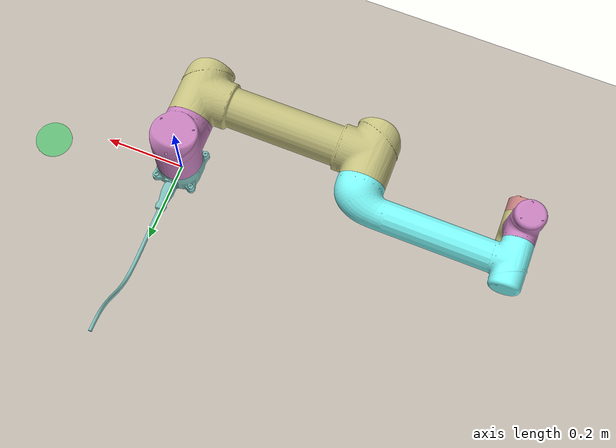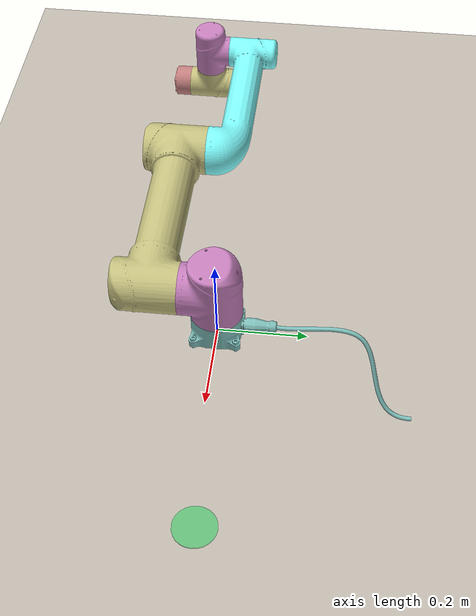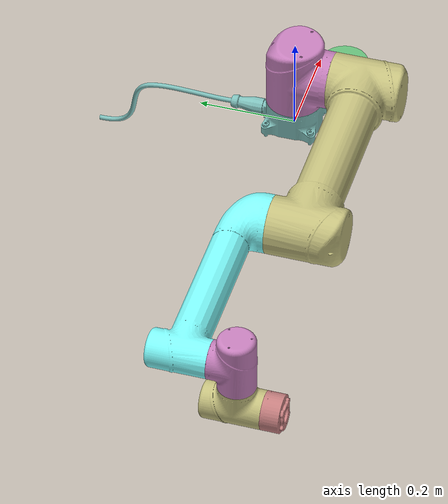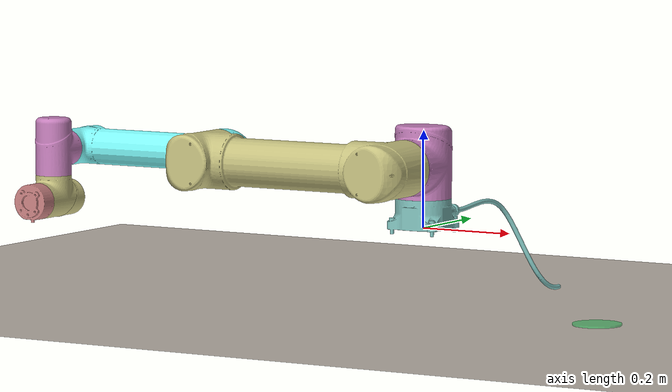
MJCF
<?xml version="1.0" encoding="utf-8"?>
<mujoco model="revA1_scene">
  <include file="revA1_arm.xml"/>

  <statistic center="0 0 0.5" extent="1.6"/>

  <visual>
    <headlight diffuse="0.55 0.55 0.55" ambient="0.35 0.35 0.35" specular="0.1 0.1 0.1"/>
    <rgba haze="0.15 0.25 0.35 1"/>
    <global azimuth="135" elevation="-18" offwidth="1280" offheight="960"/>
  </visual>

  <asset>
    <texture name="revA1_sky" type="skybox" builtin="gradient"
             rgb1="0.28 0.40 0.56" rgb2="0.04 0.06 0.09" width="256" height="256"/>
    <texture name="revA1_floor_tex" type="2d" file="revA1_floor_grid.png"/>
    <material name="revA1_floor_mat" texture="revA1_floor_tex"
              reflectance="0.05"/>
    <material name="revA1_target_mat" rgba="0.15 0.80 0.35 0.55"/>
  </asset>

  <worldbody>
    <light name="key_light" pos="1.2 -1.2 2.4" dir="-0.4 0.4 -1" directional="true"
           diffuse="0.6 0.6 0.6" specular="0.25 0.25 0.25" castshadow="false"/>
    <light name="fill_light" pos="-1.4 1.4 1.6" dir="0.45 -0.45 -1" directional="true"
           diffuse="0.3 0.3 0.35" castshadow="false"/>

    <!-- 地面：正好在机器人的安装底面高度 -->
    <geom name="floor" type="plane" pos="0 0 -0.171217" size="4 4 0.1"
          material="revA1_floor_mat" condim="4" friction="1.0 0.005 0.0001"/>

    <!-- 名义作业点标记（纯视觉，不参与碰撞）= home 姿态下 tool_site 的地面投影 -->
    <geom name="target_pad" type="cylinder" size="0.05 0.002" pos="0.4 0 -0.169217"
          material="revA1_target_mat" contype="0" conaffinity="0"/>

    <!-- 三个固定相机，方便离线渲染/录视频 -->
    <camera name="overview_cam" pos="1.6 -1.6 1.1" xyaxes="0.7071 0.7071 0 -0.21 0.21 0.958"
            fovy="45"/>
    <camera name="top_cam" pos="0 0 2.2" xyaxes="1 0 0 0 1 0" fovy="50"/>
    <camera name="side_cam" pos="2.2 0 0.7" xyaxes="0 1 0 0 0 1" fovy="50"/>
  </worldbody>

  <keyframe>
    <!-- home：真机实测姿态（拍摄点云时的姿态）——无自碰撞、工具尖离地面 0.567 m，
         可以直接作为训练/演示的初始位姿。改姿态后请重跑 check_model.py 复核。 -->
    <key name="home" qpos="1.72836 -2.39037 2.11474 1.19617 1.72995 -1.75492" ctrl="1.72836 -2.39037 2.11474 1.19617 1.72995 -1.75492"/>
  </keyframe>
</mujoco>

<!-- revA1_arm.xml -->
<mujoco model="revA1">
  <compiler angle="radian" meshdir="meshes" autolimits="true" inertiafromgeom="false"/>
  <option timestep="0.002" integrator="implicitfast" cone="elliptic" impratio="10"
          iterations="50" tolerance="1e-9" gravity="0 0 -9.81"/>

  <default>
    <!-- damping/frictionloss：静止时不抖；armature（电机+减速器折算惯量）对高 kp 位置伺服的
         稳定性非常关键，太小会震、太大会钝。 -->
    <joint damping="0.8" armature="0.5" frictionloss="0.5"/>
    <geom friction="1.0 0.005 0.0001" condim="4" solref="0.004 1" solimp="0.95 0.99 0.001"/>
    <position kp="8000" kv="400"/>
  </default>

  <asset>
    <mesh name="base_link" content_type="model/stl" file="base_link.STL"/>
    <mesh name="Link1" content_type="model/stl" file="Link1.STL"/>
    <mesh name="Link2" content_type="model/stl" file="Link2.STL"/>
    <mesh name="Link3" content_type="model/stl" file="Link3.STL"/>
    <mesh name="Link4" content_type="model/stl" file="Link4.STL"/>
    <mesh name="Link5" content_type="model/stl" file="Link5.STL"/>
    <mesh name="ee_Link" content_type="model/stl" file="ee_Link.STL"/>
  </asset>

  <worldbody>
    <body name="base_link">
      <inertial pos="0.0014058 0.02448 0.022681" mass="5.0487" fullinertia="0.016738 0.0075316 0.018135 -0.0014542 0.0008442 0.0035371"/>
      <geom name="base_link_geom" type="mesh" rgba="0.5 0.75686 0.73725 1" mesh="base_link"/>
    </body>
    <body name="Link1" pos="0 0 0.0615">
      <inertial pos="1.0637e-05 -0.005295 0.072879" quat="0.99993 0.011444 0.000547113 -0.00282637" mass="13.203" diaginertia="0.036031 0.0353042 0.0252577"/>
      <joint name="joint1" range="-3.1415 3.1415"/>
      <geom name="Link1_geom" type="mesh" rgba="0.77647 0.5 0.73725 1" mesh="Link1"/>
      <body name="Link2" pos="0 -0.078 0.0675" quat="0.707105 0.707108 0 0">
        <inertial pos="-0.22081 -6.9449e-08 0.070574" quat="0.500014 0.500011 0.499986 0.499989" mass="46.802" diaginertia="1.4978 1.476 0.096336"/>
        <joint name="joint2" range="-3.1415 3.1415"/>
        <geom name="Link2_geom" type="mesh" rgba="0.77647 0.75686 0.5 1" mesh="Link2"/>
        <body name="Link3" pos="-0.442 0 -0.0003">
          <inertial pos="-0.1918 -8.518e-08 -0.055853" quat="0.511431 0.488303 0.488285 0.511445" mass="20.24" diaginertia="0.42906 0.42695 0.0204705"/>
          <joint name="joint3" range="-2.8623 2.8623"/>
          <geom name="Link3_geom" type="mesh" rgba="0.5 1 1 1" mesh="Link3"/>
          <body name="Link4" pos="-0.386 0 -0.0044">
            <inertial pos="1.8594e-07 0.0056527 0.048012" quat="0.706701 0.707512 5.79265e-05 -8.41597e-05" mass="4.6142" diaginertia="0.0068327 0.0066952 0.0037508"/>
            <joint name="joint4" range="-3.1415 3.1415"/>
            <geom name="Link4_geom" type="mesh" rgba="0.77647 0.5 0.73725 1" mesh="Link4"/>
            <body name="Link5" pos="0 -0.0543 0.0507" quat="0.707105 0.707108 0 0">
              <inertial pos="2.1811e-06 -0.0034366 0.048188" quat="0.70507 0.709137 -0.000152272 0.000125437" mass="4.7679" diaginertia="0.0074585 0.00733072 0.00381908"/>
              <joint name="joint5" range="-3.1415 3.1415"/>
              <geom name="Link5_geom" type="mesh" rgba="0.77647 0.75686 0.5 1" mesh="Link5"/>
              <body name="ee_Link" pos="0 0.0543 0.0507" quat="0.707105 -0.707108 0 0">
                <inertial pos="-2.6515e-06 -9.8103e-05 0.021947" quat="0.510385 0.489598 -0.502945 0.496837" mass="1.1773" diaginertia="0.000873069 0.000554031 0.00055272"/>
                <joint name="joint6" range="-3.1415 3.1415" axis="0 0 1"/>
                <geom name="ee_Link_geom" type="mesh" rgba="0.77647 0.5 0.5 1" mesh="ee_Link"/>
                <!-- J6 法兰中心（机械接口原点）：插工具/相机都用它 -->
                <site name="ee_site" pos="0 0 0" size="0.012" rgba="1 0.55 0.1 1" group="3"/>
                <!-- 工具尖端 / TCP：= ee_site 沿工具轴 +42.7mm -->
                <site name="tool_site" pos="0 0 0.0427" size="0.012" rgba="0.2 1 0.3 1" group="3"/>
              </body>
            </body>
          </body>
        </body>
      </body>
    </body>
  </worldbody>
  <actuator>
    <position name="act_joint1" joint="joint1" kp="4000" kv="300" ctrlrange="-3.1415 3.1415" forcerange="-300 300"/>
    <position name="act_joint2" joint="joint2" kp="20000" kv="1000" ctrlrange="-3.1415 3.1415" forcerange="-600 600"/>
    <position name="act_joint3" joint="joint3" kp="12000" kv="600" ctrlrange="-2.8623 2.8623" forcerange="-400 400"/>
    <position name="act_joint4" joint="joint4" kp="4000" kv="200" ctrlrange="-3.1415 3.1415" forcerange="-120 120"/>
    <position name="act_joint5" joint="joint5" kp="3000" kv="150" ctrlrange="-3.1415 3.1415" forcerange="-100 100"/>
    <position name="act_joint6" joint="joint6" kp="1500" kv="80" ctrlrange="-3.1415 3.1415" forcerange="-60 60"/>
  </actuator>
  <!-- 树距离 <= 2 的连杆对不参与自碰撞（关节处外观件本来就叠在一起） -->
  <contact>
    <exclude body1="base_link" body2="Link1"/>
    <exclude body1="base_link" body2="Link2"/>
    <exclude body1="Link1" body2="Link2"/>
    <exclude body1="Link1" body2="Link3"/>
    <exclude body1="Link2" body2="Link3"/>
    <exclude body1="Link2" body2="Link4"/>
    <exclude body1="Link3" body2="Link4"/>
    <exclude body1="Link3" body2="Link5"/>
    <exclude body1="Link4" body2="Link5"/>
    <exclude body1="Link4" body2="ee_Link"/>
    <exclude body1="Link5" body2="ee_Link"/>
  </contact>
</mujoco>
